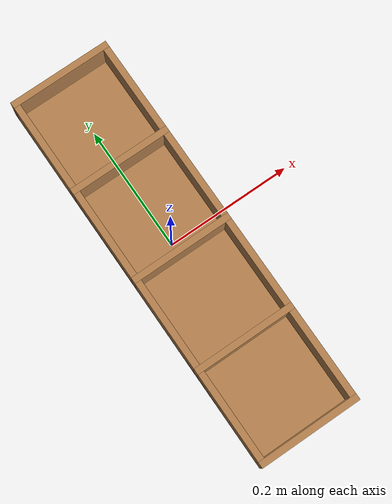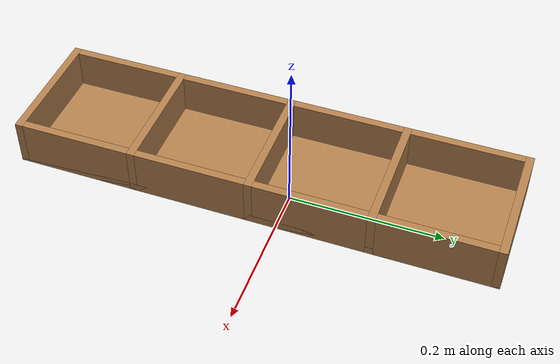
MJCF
<mujoco model="bin">
    <compiler angle="radian" inertiafromgeom="auto"/>
    <asset>
        <texture name="T_shelf_wood" type="cube" file="textures/wood1.png"/>
        <material name="case" texture="T_shelf_wood" reflectance="0.7" texrepeat="5 5" texuniform="true"/>
    </asset>
    <default>
        <default class="case">
            <geom conaffinity="1" condim="3" contype="1" group="0" material="case" solimp="0.99 0.99 0.01"
                  solref="0.01 1" density="8000"/>
        </default>
    </default>

    <worldbody>
        <body>
            <body name="object">
                <body name="box_1" pos="0 -0.25 0.03">
                    <geom class="case" pos="0 -0.075 0.03" size="0.08 0.005 0.03" type="box"/>
                    <geom class="case" pos="0 0.075 0.03" size="0.08 0.005 0.03" type="box"/>
                    <geom class="case" pos="0.075 0 0.03" size="0.005 0.07 0.03" type="box"/>
                    <geom class="case" pos="-0.075 0 0.03" size="0.005 0.07 0.03" type="box"/>
                    <geom class="case" pos="0 0 0.005" size="0.08 0.08 0.005" type="box"/>
                </body>
                <body name="box_2" pos="0.0 -0.1 0.03">
                    <geom class="case" pos="0 -0.075 0.03" size="0.08 0.005 0.03" type="box"/>
                    <geom class="case" pos="0 0.075 0.03" size="0.08 0.005 0.03" type="box"/>
                    <geom class="case" pos="0.075 0 0.03" size="0.005 0.07 0.03" type="box"/>
                    <geom class="case" pos="-0.075 0 0.03" size="0.005 0.07 0.03" type="box"/>
                    <geom class="case" pos="0 0 0.005" size="0.08 0.08 0.005" type="box"/>
                </body>
                <body name="box_3" pos="0.0 0.05 0.03">
                    <geom class="case" pos="0 -0.075 0.03" size="0.08 0.005 0.03" type="box"/>
                    <geom class="case" pos="0 0.075 0.03" size="0.08 0.005 0.03" type="box"/>
                    <geom class="case" pos="0.075 0 0.03" size="0.005 0.07 0.03" type="box"/>
                    <geom class="case" pos="-0.075 0 0.03" size="0.005 0.07 0.03" type="box"/>
                    <geom class="case" pos="0 0 0.005" size="0.08 0.08 0.005" type="box"/>
                </body>
                <body name="box_4" pos="0.0 0.2 0.03">
                    <geom class="case" pos="0 -0.075 0.03" size="0.08 0.005 0.03" type="box"/>
                    <geom class="case" pos="0 0.075 0.03" size="0.08 0.005 0.03" type="box"/>
                    <geom class="case" pos="0.075 0 0.03" size="0.005 0.07 0.03" type="box"/>
                    <geom class="case" pos="-0.075 0 0.03" size="0.005 0.07 0.03" type="box"/>
                    <geom class="case" pos="0 0 0.005" size="0.08 0.08 0.005" type="box"/>
                </body>
            </body>
            <site rgba="0 0 0 0" size="0.0005" pos="0 0 -0.08" name="bottom_site"/>
            <site rgba="0 0 0 0" size="0.0005" pos="0 0 0.65" name="top_site"/>
            <site rgba="0 0 0 0" size="0.0005" pos="0.011 0.09 0" name="horizontal_radius_site"/>
        </body>
    </worldbody>
</mujoco>
